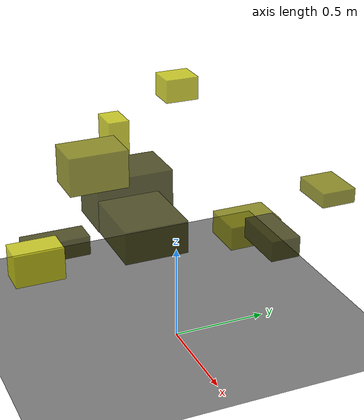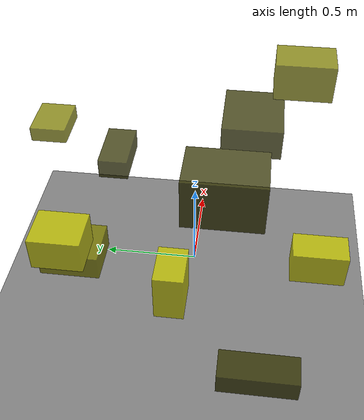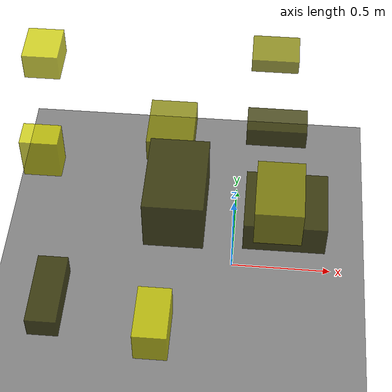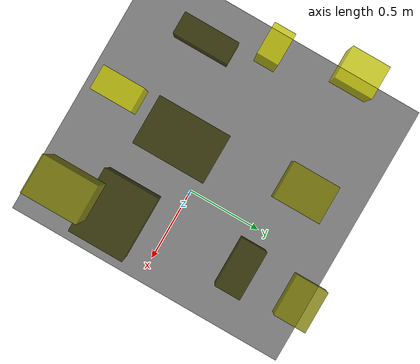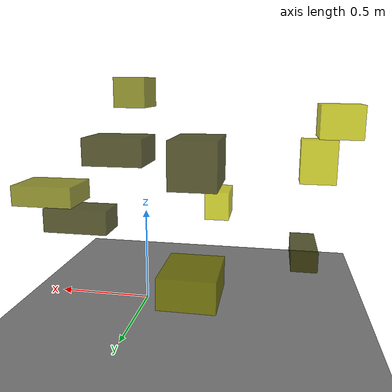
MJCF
<?xml version="1.0"?>
<mujoco model="obstacle_scene">
  <compiler angle="radian" coordinate="local"/>
  <option timestep="0.001" gravity="0 0 -9.81"/>

  <asset>
    <material name="obstacle_mat" rgba="0.8 0.8 0.0 0.8"/>
    <material name="ground_mat" rgba="0.5 0.5 0.5 1"/>
  </asset>

  <worldbody>
    <!-- Ground plane -->
    <geom name="ground" type="plane" size="3 3 0.1" material="ground_mat"/>

    <!-- Obstacles -->
    <body name="obstacle_0" pos="0.183570 0.439708 0.570526">
      <geom name="obs_0" type="box" size="0.146166 0.076569 0.053134" rgba="0.2 0.2 0.0 0.8"/>
    </body>
    <body name="obstacle_1" pos="0.191418 -0.488399 1.118022">
      <geom name="obs_1" type="box" size="0.095323 0.136874 0.089181" rgba="0.5 0.5 0.0 0.8"/>
    </body>
    <body name="obstacle_2" pos="-0.920672 0.399329 1.017444">
      <geom name="obs_2" type="box" size="0.082502 0.095864 0.066373" rgba="0.8 0.8 0.0 0.8"/>
    </body>
    <body name="obstacle_3" pos="-0.254411 -0.164893 0.747752">
      <geom name="obs_3" type="box" size="0.132990 0.198293 0.134080" rgba="0.2 0.2 0.0 0.8"/>
    </body>
    <body name="obstacle_4" pos="0.157160 0.760142 0.761254">
      <geom name="obs_4" type="box" size="0.115622 0.089962 0.037760" rgba="0.5 0.5 0.0 0.8"/>
    </body>
    <body name="obstacle_5" pos="-0.321767 -0.639001 0.408221">
      <geom name="obs_5" type="box" size="0.076416 0.131380 0.088604" rgba="0.8 0.8 0.0 0.8"/>
    </body>
    <body name="obstacle_6" pos="-0.858065 -0.383063 0.186811">
      <geom name="obs_6" type="box" size="0.073747 0.186847 0.058072" rgba="0.2 0.2 0.0 0.8"/>
    </body>
    <body name="obstacle_7" pos="-0.351556 0.575137 0.358715">
      <geom name="obs_7" type="box" size="0.119296 0.149328 0.066019" rgba="0.5 0.5 0.0 0.8"/>
    </body>
    <body name="obstacle_8" pos="-0.882722 0.000585 0.793142">
      <geom name="obs_8" type="box" size="0.085984 0.058942 0.107331" rgba="0.8 0.8 0.0 0.8"/>
    </body>
    <body name="obstacle_9" pos="0.230302 -0.269076 0.789902">
      <geom name="obs_9" type="box" size="0.177111 0.151513 0.079848" rgba="0.2 0.2 0.0 0.8"/>
    </body>
  </worldbody>
</mujoco>
